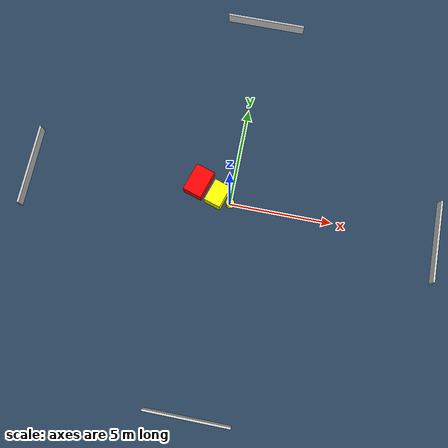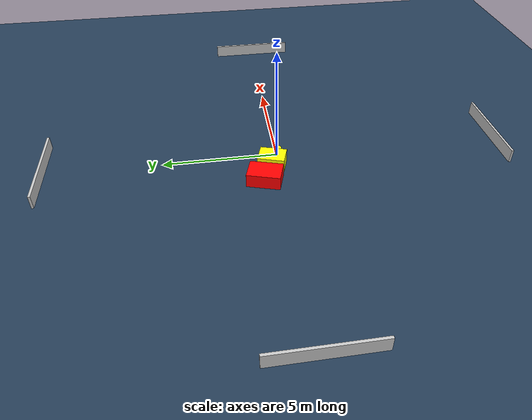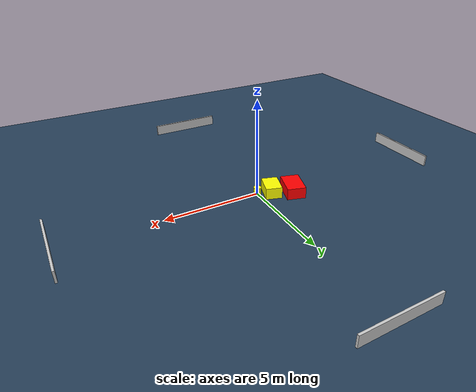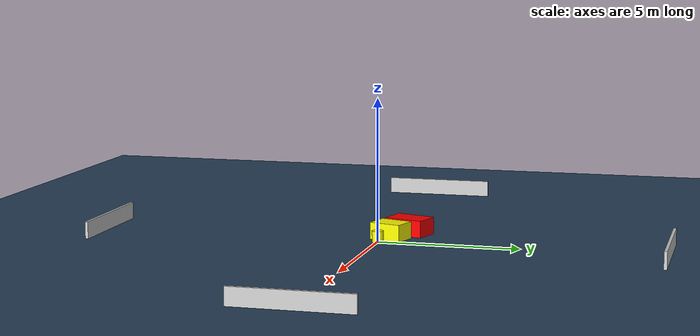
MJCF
<?xml version="1.0" ?>
<mujoco model="generated_environment">
  <option timestep="0.01" integrator="RK4" cone="elliptic"/>
  <default>
    <geom density="1"/>
  </default>
  <asset>
    <texture builtin="gradient" height="3072" name="skybox" rgb1="0.3 0.5 0.7" rgb2="0 0 0" type="skybox" width="512"/>
    <texture builtin="checker" height="300" name="groundplane" rgb1="0.2 0.3 0.4" rgb2="0.1 0.2 0.3" type="2d" width="300"/>
    <material name="groundplane" reflectance="0.2" texrepeat="5 5" texture="groundplane"/>
  </asset>
  <worldbody>
    <light dir="0 0 -1" directional="true" pos="0 0 1.5"/>
    <geom condim="3" friction="0.5 0.005 0.001" material="groundplane" name="floor" pos="0 0 0" size="0 0 0.05" type="plane"/>
    <body name="walls">
      <geom name="wall_1" condim="4" pos="-10.0 0.0 0.3" rgba="0.800000011920929 0.800000011920929 0.800000011920929 1.0" size="0.05 2.0 0.3" type="box"/>
      <geom name="wall_2" condim="4" pos="10.0 0.0 0.3" rgba="0.800000011920929 0.800000011920929 0.800000011920929 1.0" size="0.05 2.0 0.3" type="box"/>
      <geom name="wall_3" condim="4" pos="0.0 -10.0 0.3" rgba="0.800000011920929 0.800000011920929 0.800000011920929 1.0" size="2.0 0.05 0.3" type="box"/>
      <geom name="wall_4" condim="4" pos="0.0 10.0 0.3" rgba="0.800000011920929 0.800000011920929 0.800000011920929 1.0" size="2.0 0.05 0.3" type="box"/>
    </body>
    <body name="robot">
      <joint name="joint_x" type="slide" pos="0 0 0" axis="1 0 0"/>
      <joint name="joint_y" type="slide" pos="0 0 0" axis="0 1 0"/>
      <geom name="robot" type="cylinder" pos="0.0 0.0 0.2" size="0.2 0.2 0.0" mass="5.0" friction="1.0 0.005 0.0001" condim="4" rgba="1.0 1.0 0.0 1.0"/>
    </body>
    <body name="obstacle_1_movable">
      <geom name="obstacle_1_movable" condim="4" pos="-0.6717735428395994 0.29418337436820247 0.3" euler="0 0 252.5993623077241" friction="0.0 0.005 0.001" rgba="1.0 1.0 0.0 1.0" size="0.5756673877719403 0.42180696906584647 0.3" type="box" mass="0.1"/>
      <joint type="free"/>
    </body>
    <body name="obstacle_2_static">
      <geom name="obstacle_2_static" condim="4" pos="-1.686668706739604 0.7391544066025479 0.3" euler="0 0 163.05694325417784" friction="0.0 0.005 0.001" rgba="1.0 0.0 0.0 1.0" size="0.4823370264433027 0.7097921432713297 0.3" type="box"/>
    </body>
  </worldbody>
  <actuator>
    <motor name="actuator_x" joint="joint_x" gear="1" ctrlrange="-1 1"/>
    <motor name="actuator_y" joint="joint_y" gear="1" ctrlrange="-1 1"/>
  </actuator>
</mujoco>
